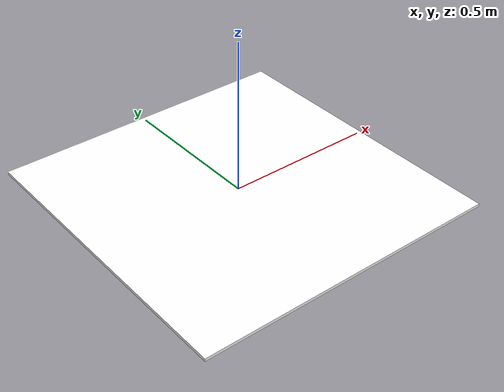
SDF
<?xml version="1.0" ?>
<sdf version="1.5">
  <model name="tag">
    <pose>0.0 0.0 0.0 0 0 0</pose>
    <link name="link">
        <inertial>
        <pose>0 0 0 0 0 0</pose>
        <mass>2.0</mass>
        <inertia>
          <ixx>0.01</ixx>
          <ixy>0</ixy>
          <ixz>0</ixz>
          <iyy>0.01</iyy>
          <iyz>0</iyz>
          <izz>0.01</izz>
        </inertia>
      </inertial>
      <collision name="collision">
        <geometry>
          <box>
            <size>1.02 1.02 0.01</size>
          </box>
        </geometry>
        <surface>
          <friction>
            <ode>
              <mu>1.0</mu>
              <mu2>1.0</mu2>
              <fdir1>1 0 0</fdir1>
            </ode>
          </friction>
          <contact>
            <ode>
              <kp>1e+12</kp>
              <kd>1</kd>
              <max_vel>10</max_vel>
              <min_depth>0.003</min_depth>
            </ode>
          </contact>
        </surface>
      </collision>
      <visual name="visual">
        <geometry>
          <box>
            <size>1.02 1.02 0.01</size>
          </box>
        </geometry>
        <!-- Aruco marker as the land pad structure -->
        <material>
          <script>
            <uri>model://tag/materials/scripts</uri>
            <uri>model://tag/materials/textures</uri>
            <name>ArucoVisualMarker0/Marker</name>
          </script>
          <ambient>1 1 1 1</ambient>
          <diffuse>1 1 1 1</diffuse>
          <specular>0 0 0 1</specular>
          <emissive>1 1 1 0</emissive>
          <shader type='vertex'>
            <normal_map>__default__</normal_map>
          </shader>
        </material>
      </visual>
    </link>
    <!-- Add a GPS on the land pad -->
  </model>
</sdf>
